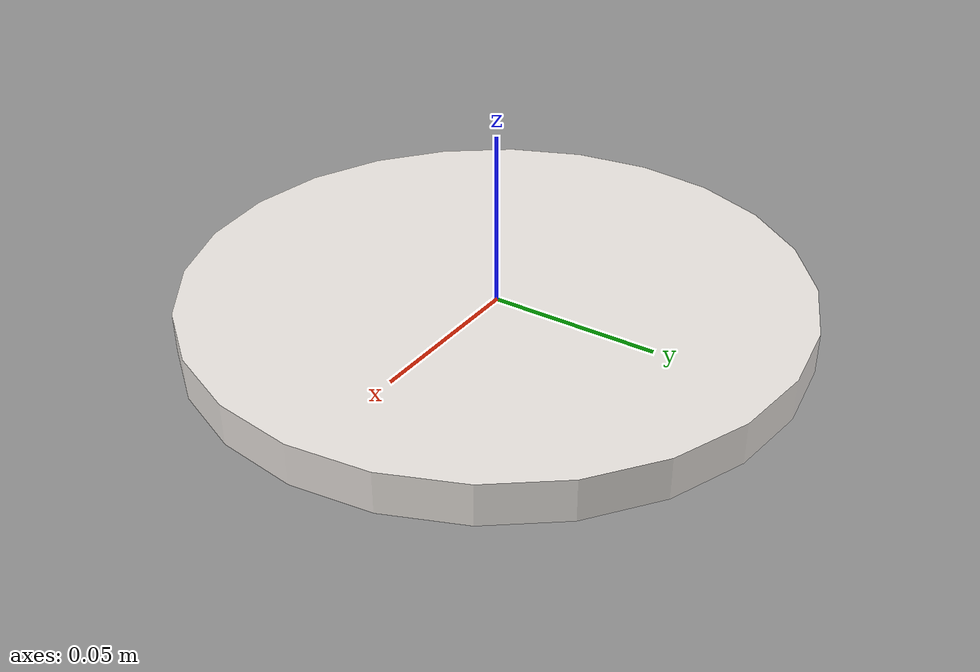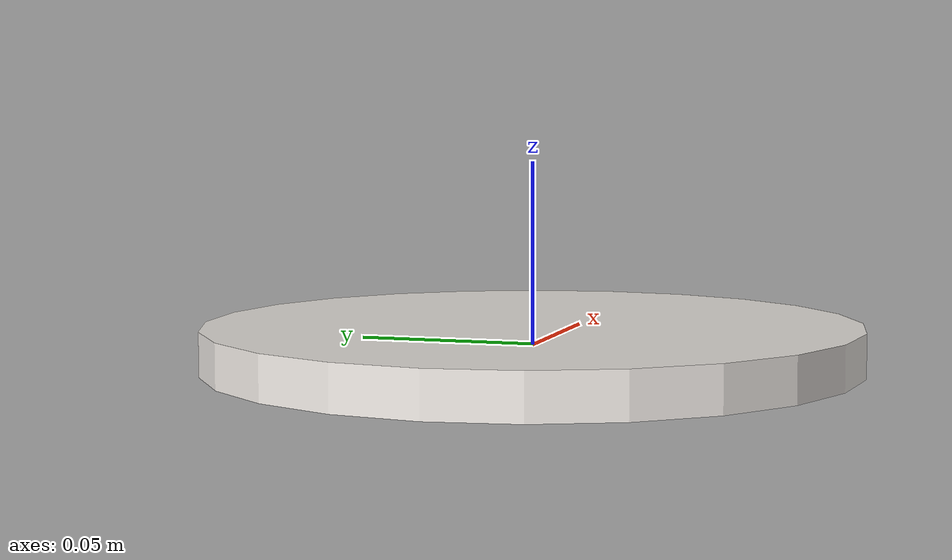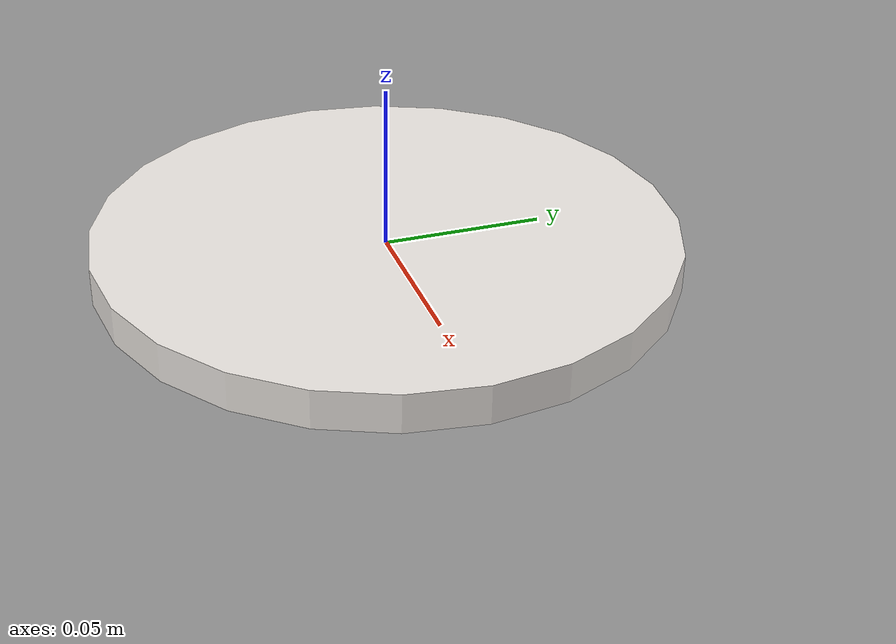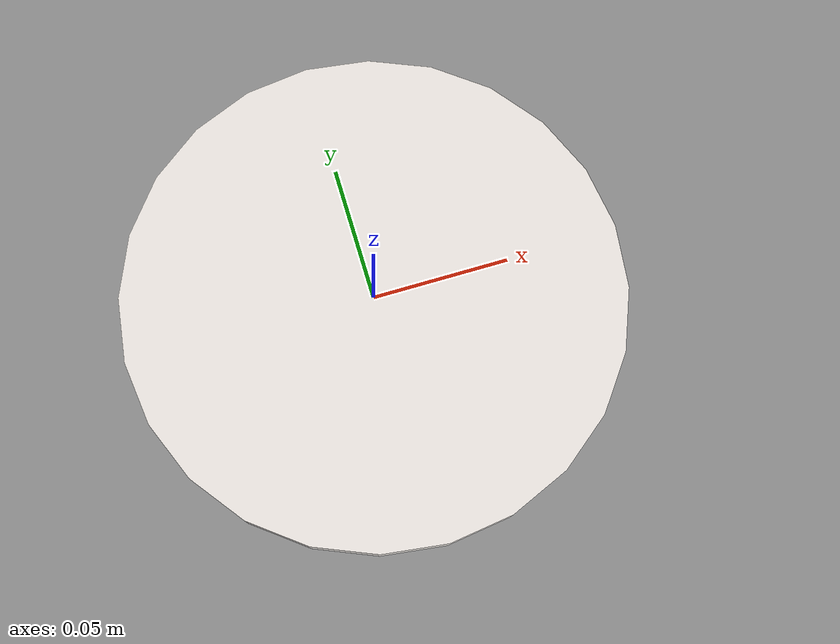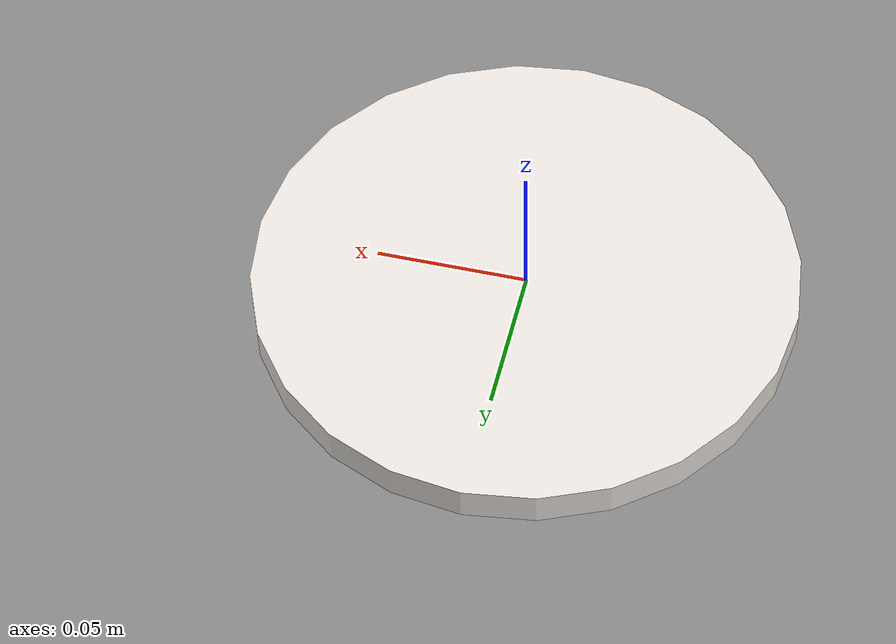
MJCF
<mujoco model="plate">
  <asset>
    <material name="plate_mat" rgba="0.92 0.90 0.88 1.0" specular="0.4" shininess="0.3"/>
  </asset>
  <worldbody>
    <body>
      <body name="object">
        <geom pos="0 0 0" type="cylinder" size="0.09 0.006" solimp="0.998 0.998 0.001"
              solref="0.001 1" density="2000" friction="0.8 0.3 0.1" material="plate_mat"
              group="0" condim="4"/>
      </body>
      <site rgba="0 0 0 0" size="0.005" pos="0 0 -0.006" name="bottom_site"/>
      <site rgba="0 0 0 0" size="0.005" pos="0 0 0.006" name="top_site"/>
      <site rgba="0 0 0 0" size="0.005" pos="0.09 0 0" name="horizontal_radius_site"/>
    </body>
  </worldbody>
</mujoco>
